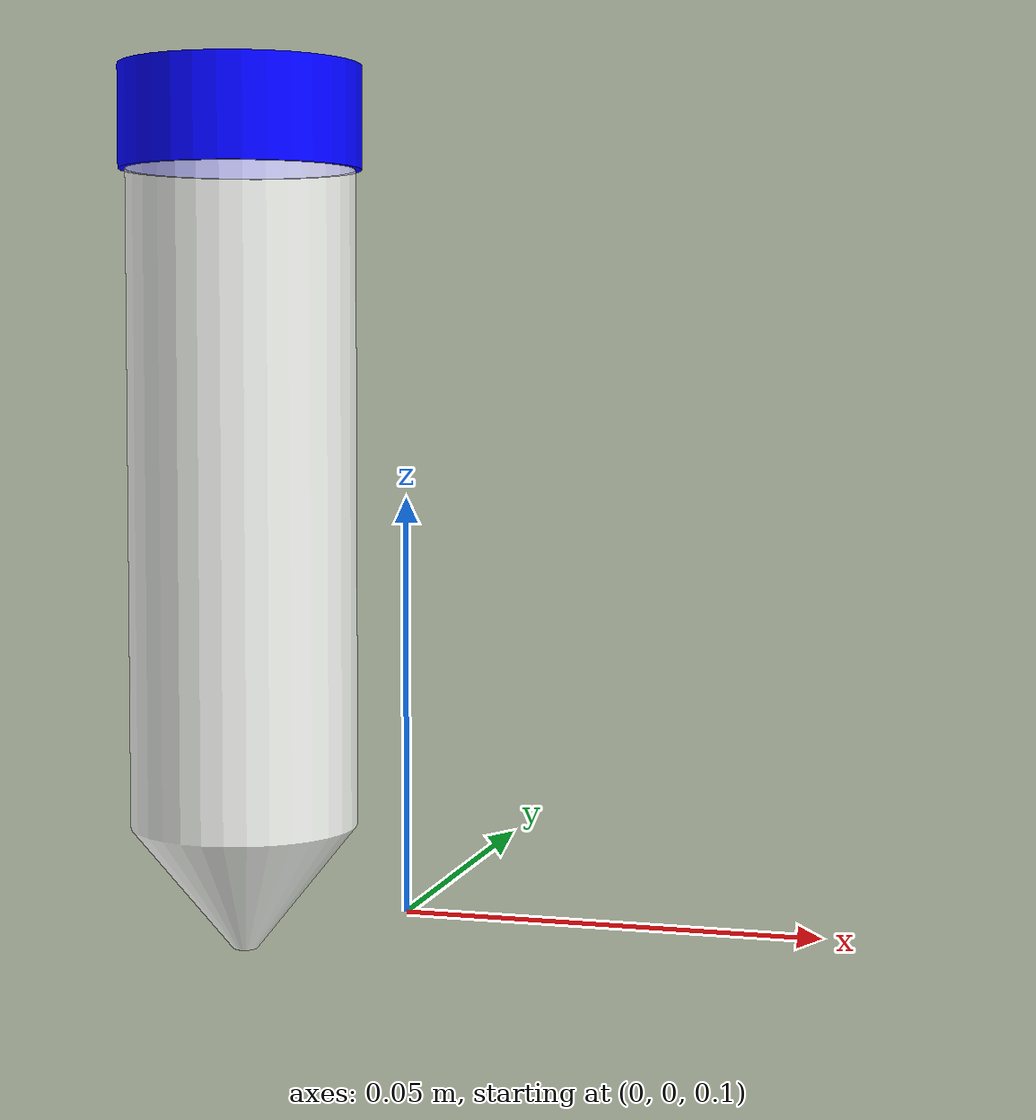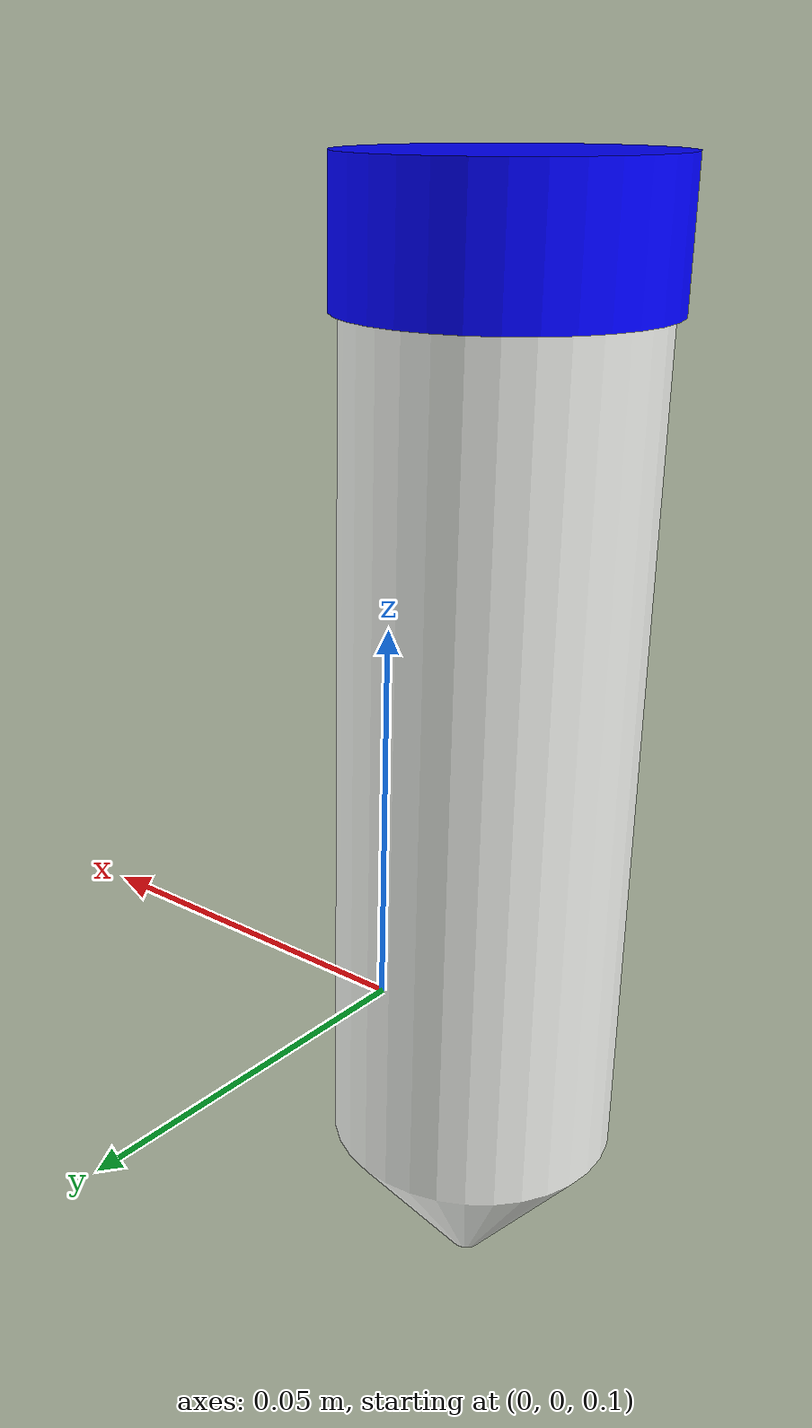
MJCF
<mujoco model="insert_tube_tube">
  <compiler angle="radian" meshdir="." autolimits="true" convexhull="true"/>

  <asset>
    <mesh name="tube" file="tube.stl" scale="1 1 1"/>
    <mesh name="case" file="case.stl" scale="1 1 1"/>
  </asset>

  <option sdf_iterations="10" sdf_initpoints="40"/>

  <worldbody>
    <body name="tube_body">
      <inertial pos="0 0 0" mass="0.05" diaginertia="0.0001 0.0001 0.0001"/>

      <!-- Tube mesh with collision enabled using convex hull -->
      <geom type="mesh" mesh="tube" pos="0 0 0" rgba="1 1 1 0.8"
            contype="1"
            conaffinity="1"
            friction="0.2 0.05 0.0001"
            condim="3"
            solref="0.002 1"
            solimp="0.95 0.99 0.001"/>

      <!-- Case visual only -->
      <geom type="mesh" rgba="0 0 1 1" mesh="case"
            contype="0" conaffinity="0" group="0"/>
    </body>
  </worldbody>
</mujoco>
